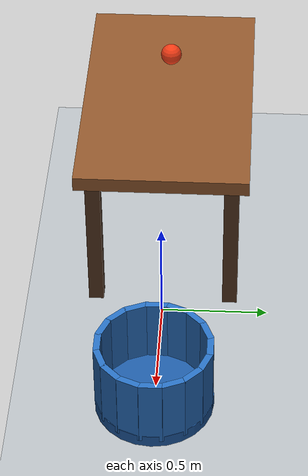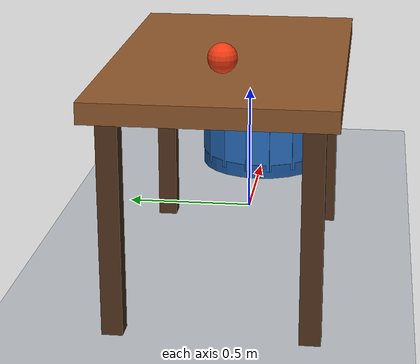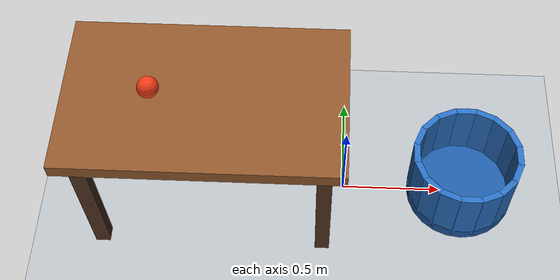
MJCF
<mujoco model="ball_rolls_into_bucket">
  <compiler angle="degree" inertiafromgeom="true"/>
  <option timestep="0.002" gravity="0 0 -9.81" integrator="implicitfast" solver="Newton" iterations="80" cone="elliptic"/>
  <visual>
    <headlight ambient="0.35 0.35 0.35" diffuse="0.65 0.65 0.65"/>
  </visual>

  <worldbody>
    <light name="overhead" pos="-0.3 -1 3" dir="0.1 0.2 -1"/>
    <camera name="overview" pos="0 -3 1.65" xyaxes="1 0 0 0 0.35 0.93675"/>

    <geom name="floor" type="plane" size="4 4 0.1" rgba="0.72 0.74 0.76 1" condim="6" friction="0.9 0.02 0.02" solref="0.01 1"/>

    <!-- The tabletop ends at x = 0 and its upper surface is z = 0.80. -->
    <body name="table" pos="0 0 0">
      <geom name="table_top" type="box" pos="-0.65 0 0.765" size="0.65 0.40 0.035" rgba="0.56 0.34 0.17 1" priority="2" condim="3" friction="0.8 0.005 0.0001" solref="0.01 1"/>
      <geom name="table_leg_back_left" type="box" pos="-1.20 -0.32 0.365" size="0.035 0.035 0.365" rgba="0.32 0.20 0.12 1"/>
      <geom name="table_leg_back_right" type="box" pos="-1.20 0.32 0.365" size="0.035 0.035 0.365" rgba="0.32 0.20 0.12 1"/>
      <geom name="table_leg_front_left" type="box" pos="-0.10 -0.32 0.365" size="0.035 0.035 0.365" rgba="0.32 0.20 0.12 1"/>
      <geom name="table_leg_front_right" type="box" pos="-0.10 0.32 0.365" size="0.035 0.035 0.365" rgba="0.32 0.20 0.12 1"/>
    </body>

    <!-- Open bucket, centered exactly 0.60 m beyond the table edge. -->
    <!-- Overlapping wall segments form a closed ring without a lid. -->
    <body name="bucket" pos="0.60 0 0">
      <geom name="bucket_bottom" type="cylinder" pos="0 0 0.03" size="0.27 0.03" rgba="0.12 0.36 0.65 1" priority="1" condim="6" friction="1.0 0.02 0.02" solref="0.01 1"/>
      <geom name="bucket_wall_00" type="box" pos="0.250000 0 0.20" euler="0 0 0" size="0.015 0.052 0.17" rgba="0.16 0.44 0.76 1" priority="1" condim="6" friction="1.0 0.02 0.02" solref="0.01 1"/>
      <geom name="bucket_wall_01" type="box" pos="0.230970 0.095671 0.20" euler="0 0 22.5" size="0.015 0.052 0.17" rgba="0.16 0.44 0.76 1" priority="1" condim="6" friction="1.0 0.02 0.02" solref="0.01 1"/>
      <geom name="bucket_wall_02" type="box" pos="0.176777 0.176777 0.20" euler="0 0 45" size="0.015 0.052 0.17" rgba="0.16 0.44 0.76 1" priority="1" condim="6" friction="1.0 0.02 0.02" solref="0.01 1"/>
      <geom name="bucket_wall_03" type="box" pos="0.095671 0.230970 0.20" euler="0 0 67.5" size="0.015 0.052 0.17" rgba="0.16 0.44 0.76 1" priority="1" condim="6" friction="1.0 0.02 0.02" solref="0.01 1"/>
      <geom name="bucket_wall_04" type="box" pos="0 0.250000 0.20" euler="0 0 90" size="0.015 0.052 0.17" rgba="0.16 0.44 0.76 1" priority="1" condim="6" friction="1.0 0.02 0.02" solref="0.01 1"/>
      <geom name="bucket_wall_05" type="box" pos="-0.095671 0.230970 0.20" euler="0 0 112.5" size="0.015 0.052 0.17" rgba="0.16 0.44 0.76 1" priority="1" condim="6" friction="1.0 0.02 0.02" solref="0.01 1"/>
      <geom name="bucket_wall_06" type="box" pos="-0.176777 0.176777 0.20" euler="0 0 135" size="0.015 0.052 0.17" rgba="0.16 0.44 0.76 1" priority="1" condim="6" friction="1.0 0.02 0.02" solref="0.01 1"/>
      <geom name="bucket_wall_07" type="box" pos="-0.230970 0.095671 0.20" euler="0 0 157.5" size="0.015 0.052 0.17" rgba="0.16 0.44 0.76 1" priority="1" condim="6" friction="1.0 0.02 0.02" solref="0.01 1"/>
      <geom name="bucket_wall_08" type="box" pos="-0.250000 0 0.20" euler="0 0 180" size="0.015 0.052 0.17" rgba="0.16 0.44 0.76 1" priority="1" condim="6" friction="1.0 0.02 0.02" solref="0.01 1"/>
      <geom name="bucket_wall_09" type="box" pos="-0.230970 -0.095671 0.20" euler="0 0 202.5" size="0.015 0.052 0.17" rgba="0.16 0.44 0.76 1" priority="1" condim="6" friction="1.0 0.02 0.02" solref="0.01 1"/>
      <geom name="bucket_wall_10" type="box" pos="-0.176777 -0.176777 0.20" euler="0 0 225" size="0.015 0.052 0.17" rgba="0.16 0.44 0.76 1" priority="1" condim="6" friction="1.0 0.02 0.02" solref="0.01 1"/>
      <geom name="bucket_wall_11" type="box" pos="-0.095671 -0.230970 0.20" euler="0 0 247.5" size="0.015 0.052 0.17" rgba="0.16 0.44 0.76 1" priority="1" condim="6" friction="1.0 0.02 0.02" solref="0.01 1"/>
      <geom name="bucket_wall_12" type="box" pos="0 -0.250000 0.20" euler="0 0 270" size="0.015 0.052 0.17" rgba="0.16 0.44 0.76 1" priority="1" condim="6" friction="1.0 0.02 0.02" solref="0.01 1"/>
      <geom name="bucket_wall_13" type="box" pos="0.095671 -0.230970 0.20" euler="0 0 292.5" size="0.015 0.052 0.17" rgba="0.16 0.44 0.76 1" priority="1" condim="6" friction="1.0 0.02 0.02" solref="0.01 1"/>
      <geom name="bucket_wall_14" type="box" pos="0.176777 -0.176777 0.20" euler="0 0 315" size="0.015 0.052 0.17" rgba="0.16 0.44 0.76 1" priority="1" condim="6" friction="1.0 0.02 0.02" solref="0.01 1"/>
      <geom name="bucket_wall_15" type="box" pos="0.230970 -0.095671 0.20" euler="0 0 337.5" size="0.015 0.052 0.17" rgba="0.16 0.44 0.76 1" priority="1" condim="6" friction="1.0 0.02 0.02" solref="0.01 1"/>
    </body>

    <body name="ball" pos="-0.90 0 0.85">
      <freejoint name="ball_free"/>
      <geom name="ball" type="sphere" size="0.05" mass="0.10" rgba="0.95 0.23 0.08 1" condim="6" friction="0.8 0.01 0.001" solref="0.01 1"/>
    </body>
  </worldbody>

  <keyframe>
    <!-- Initial rolling condition: vx = radius * omega_y = 1.50 m/s. -->
    <key name="start" qpos="-0.90 0 0.85 1 0 0 0" qvel="1.50 0 0 0 30 0"/>
  </keyframe>
</mujoco>
